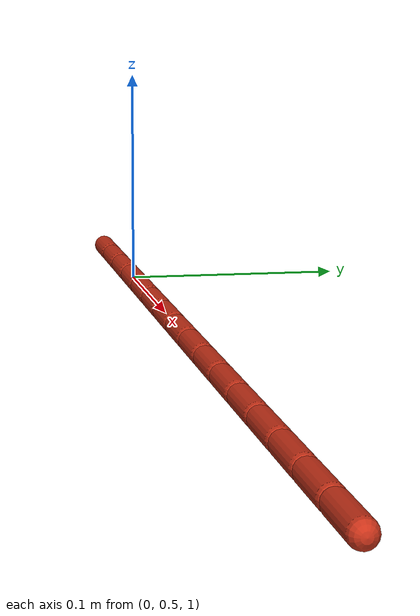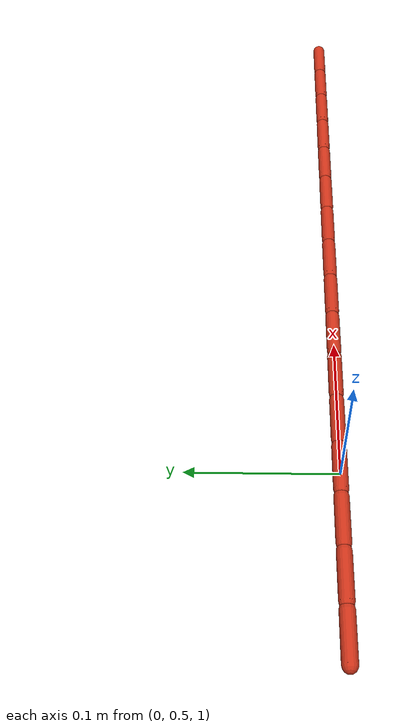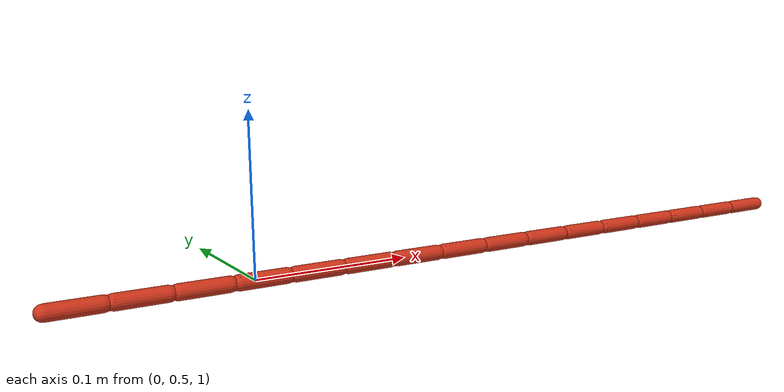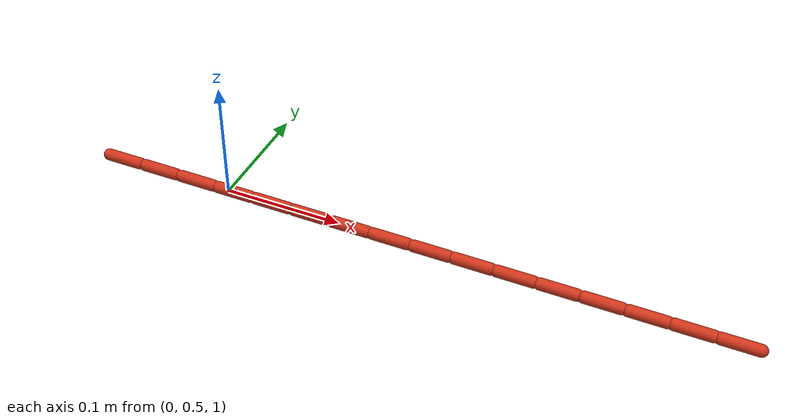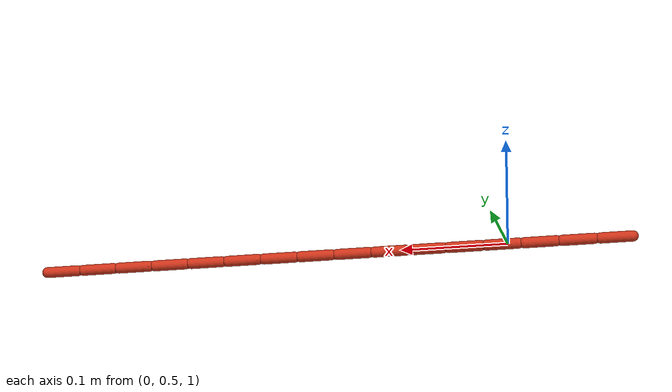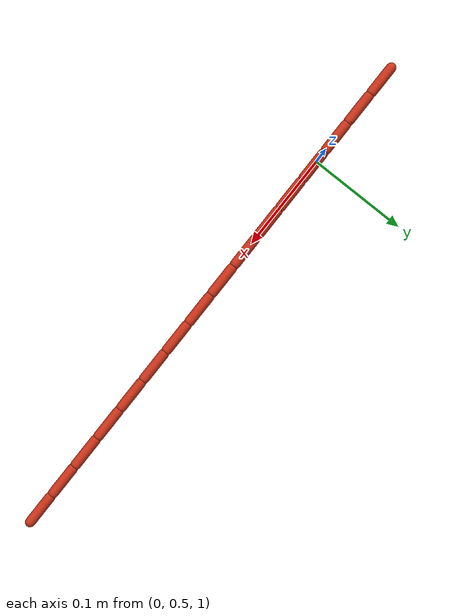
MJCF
<mujoco model="Rope">
    <compiler angle="radian" />
    <size njmax="500" nconmax="100" />
    <worldbody>
        <body name="B10" pos="0.25 0.5 1">
            <inertial pos="0 0 0" quat="0.707107 0 0.707107 0" mass="0.00274889" diaginertia="2.97797e-07 2.97797e-07 3.43612e-08" />
            <joint type="free" />
            <geom name="G10" size="0.005 0.015" quat="0.707107 0 0.707107 0" type="capsule" rgba="0.8 0.2 0.1 1" />
            <body name="B11" pos="0.035 0 0">
                <inertial pos="0 0 0" quat="0.707107 0 0.707107 0" mass="0.00274889" diaginertia="2.97797e-07 2.97797e-07 3.43612e-08" />
                <joint name="J0_11" pos="-0.0175 0 0" axis="0 1 0" group="3" damping="0.005" />
                <joint name="J1_11" pos="-0.0175 0 0" axis="0 0 1" group="3" damping="0.005" />
                <geom name="G11" size="0.005 0.015" quat="0.707107 0 0.707107 0" type="capsule" rgba="0.8 0.2 0.1 1" />
                <body name="B12" pos="0.035 0 0">
                    <inertial pos="0 0 0" quat="0.707107 0 0.707107 0" mass="0.00274889" diaginertia="2.97797e-07 2.97797e-07 3.43612e-08" />
                    <joint name="J0_12" pos="-0.0175 0 0" axis="0 1 0" group="3" damping="0.005" />
                    <joint name="J1_12" pos="-0.0175 0 0" axis="0 0 1" group="3" damping="0.005" />
                    <geom name="G12" size="0.005 0.015" quat="0.707107 0 0.707107 0" type="capsule" rgba="0.8 0.2 0.1 1" />
                    <body name="B13" pos="0.035 0 0">
                        <inertial pos="0 0 0" quat="0.707107 0 0.707107 0" mass="0.00274889" diaginertia="2.97797e-07 2.97797e-07 3.43612e-08" />
                        <joint name="J0_13" pos="-0.0175 0 0" axis="0 1 0" group="3" damping="0.005" />
                        <joint name="J1_13" pos="-0.0175 0 0" axis="0 0 1" group="3" damping="0.005" />
                        <geom name="G13" size="0.005 0.015" quat="0.707107 0 0.707107 0" type="capsule" rgba="0.8 0.2 0.1 1" />
                        <body name="B14" pos="0.035 0 0">
                            <inertial pos="0 0 0" quat="0.707107 0 0.707107 0" mass="0.00274889" diaginertia="2.97797e-07 2.97797e-07 3.43612e-08" />
                            <joint name="J0_14" pos="-0.0175 0 0" axis="0 1 0" group="3" damping="0.005" />
                            <joint name="J1_14" pos="-0.0175 0 0" axis="0 0 1" group="3" damping="0.005" />
                            <geom name="G14" size="0.005 0.015" quat="0.707107 0 0.707107 0" type="capsule" rgba="0.8 0.2 0.1 1" />
                            <body name="B15" pos="0.035 0 0">
                                <inertial pos="0 0 0" quat="0.707107 0 0.707107 0" mass="0.00274889" diaginertia="2.97797e-07 2.97797e-07 3.43612e-08" />
                                <joint name="J0_15" pos="-0.0175 0 0" axis="0 1 0" group="3" damping="0.005" />
                                <joint name="J1_15" pos="-0.0175 0 0" axis="0 0 1" group="3" damping="0.005" />
                                <geom name="G15" size="0.005 0.015" quat="0.707107 0 0.707107 0" type="capsule" rgba="0.8 0.2 0.1 1" />
                            </body>
                        </body>
                    </body>
                </body>
            </body>
            <body name="B9" pos="-0.035 0 0">
                <inertial pos="0 0 0" quat="0.707107 0 0.707107 0" mass="0.00274889" diaginertia="2.97797e-07 2.97797e-07 3.43612e-08" />
                <joint name="J0_9" pos="0.0175 0 0" axis="0 1 0" group="3" damping="0.005" />
                <joint name="J1_9" pos="0.0175 0 0" axis="0 0 1" group="3" damping="0.005" />
                <geom name="G9" size="0.005 0.015" quat="0.707107 0 0.707107 0" type="capsule" rgba="0.8 0.2 0.1 1" />
                <body name="B8" pos="-0.035 0 0">
                    <inertial pos="0 0 0" quat="0.707107 0 0.707107 0" mass="0.00274889" diaginertia="2.97797e-07 2.97797e-07 3.43612e-08" />
                    <joint name="J0_8" pos="0.0175 0 0" axis="0 1 0" group="3" damping="0.005" />
                    <joint name="J1_8" pos="0.0175 0 0" axis="0 0 1" group="3" damping="0.005" />
                    <geom name="G8" size="0.005 0.015" quat="0.707107 0 0.707107 0" type="capsule" rgba="0.8 0.2 0.1 1" />
                    <body name="B7" pos="-0.035 0 0">
                        <inertial pos="0 0 0" quat="0.707107 0 0.707107 0" mass="0.00274889" diaginertia="2.97797e-07 2.97797e-07 3.43612e-08" />
                        <joint name="J0_7" pos="0.0175 0 0" axis="0 1 0" group="3" damping="0.005" />
                        <joint name="J1_7" pos="0.0175 0 0" axis="0 0 1" group="3" damping="0.005" />
                        <geom name="G7" size="0.005 0.015" quat="0.707107 0 0.707107 0" type="capsule" rgba="0.8 0.2 0.1 1" />
                        <body name="B6" pos="-0.035 0 0">
                            <inertial pos="0 0 0" quat="0.707107 0 0.707107 0" mass="0.00274889" diaginertia="2.97797e-07 2.97797e-07 3.43612e-08" />
                            <joint name="J0_6" pos="0.0175 0 0" axis="0 1 0" group="3" damping="0.005" />
                            <joint name="J1_6" pos="0.0175 0 0" axis="0 0 1" group="3" damping="0.005" />
                            <geom name="G6" size="0.005 0.015" quat="0.707107 0 0.707107 0" type="capsule" rgba="0.8 0.2 0.1 1" />
                            <body name="B5" pos="-0.035 0 0">
                                <inertial pos="0 0 0" quat="0.707107 0 0.707107 0" mass="0.00274889" diaginertia="2.97797e-07 2.97797e-07 3.43612e-08" />
                                <joint name="J0_5" pos="0.0175 0 0" axis="0 1 0" group="3" damping="0.005" />
                                <joint name="J1_5" pos="0.0175 0 0" axis="0 0 1" group="3" damping="0.005" />
                                <geom name="G5" size="0.005 0.015" quat="0.707107 0 0.707107 0" type="capsule" rgba="0.8 0.2 0.1 1" />
                                <body name="B4" pos="-0.035 0 0">
                                    <inertial pos="0 0 0" quat="0.707107 0 0.707107 0" mass="0.00274889" diaginertia="2.97797e-07 2.97797e-07 3.43612e-08" />
                                    <joint name="J0_4" pos="0.0175 0 0" axis="0 1 0" group="3" damping="0.005" />
                                    <joint name="J1_4" pos="0.0175 0 0" axis="0 0 1" group="3" damping="0.005" />
                                    <geom name="G4" size="0.005 0.015" quat="0.707107 0 0.707107 0" type="capsule" rgba="0.8 0.2 0.1 1" />
                                    <body name="B3" pos="-0.035 0 0">
                                        <inertial pos="0 0 0" quat="0.707107 0 0.707107 0" mass="0.00274889" diaginertia="2.97797e-07 2.97797e-07 3.43612e-08" />
                                        <joint name="J0_3" pos="0.0175 0 0" axis="0 1 0" group="3" damping="0.005" />
                                        <joint name="J1_3" pos="0.0175 0 0" axis="0 0 1" group="3" damping="0.005" />
                                        <geom name="G3" size="0.005 0.015" quat="0.707107 0 0.707107 0" type="capsule" rgba="0.8 0.2 0.1 1" />
                                        <body name="B2" pos="-0.035 0 0">
                                            <inertial pos="0 0 0" quat="0.707107 0 0.707107 0" mass="0.00274889" diaginertia="2.97797e-07 2.97797e-07 3.43612e-08" />
                                            <joint name="J0_2" pos="0.0175 0 0" axis="0 1 0" group="3" damping="0.005" />
                                            <joint name="J1_2" pos="0.0175 0 0" axis="0 0 1" group="3" damping="0.005" />
                                            <geom name="G2" size="0.005 0.015" quat="0.707107 0 0.707107 0" type="capsule" rgba="0.8 0.2 0.1 1" />
                                            <body name="B1" pos="-0.035 0 0">
                                                <inertial pos="0 0 0" quat="0.707107 0 0.707107 0" mass="0.00274889" diaginertia="2.97797e-07 2.97797e-07 3.43612e-08" />
                                                <joint name="J0_1" pos="0.0175 0 0" axis="0 1 0" group="3" damping="0.005" />
                                                <joint name="J1_1" pos="0.0175 0 0" axis="0 0 1" group="3" damping="0.005" />
                                                <geom name="G1" size="0.005 0.015" quat="0.707107 0 0.707107 0" type="capsule" rgba="0.8 0.2 0.1 1" />
                                                <body name="B0" pos="-0.035 0 0">
                                                    <inertial pos="0 0 0" quat="0.707107 0 0.707107 0" mass="0.00274889" diaginertia="2.97797e-07 2.97797e-07 3.43612e-08" />
                                                    <joint name="J0_0" pos="0.0175 0 0" axis="0 1 0" group="3" damping="0.005" />
                                                    <joint name="J1_0" pos="0.0175 0 0" axis="0 0 1" group="3" damping="0.005" />
                                                    <geom name="G0" size="0.005 0.015" quat="0.707107 0 0.707107 0" type="capsule" rgba="0.8 0.2 0.1 1" />
                                                </body>
                                            </body>
                                        </body>
                                    </body>
                                </body>
                            </body>
                        </body>
                    </body>
                </body>
            </body>
        </body>
    </worldbody>
</mujoco>
